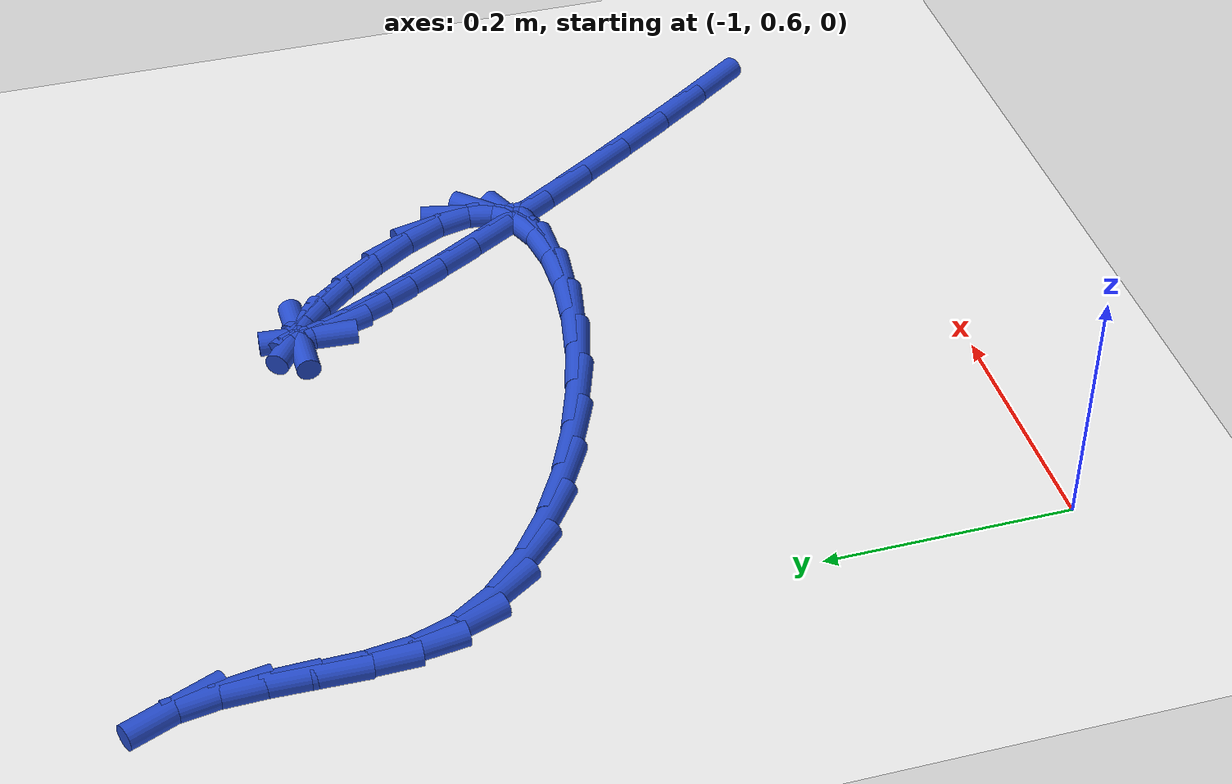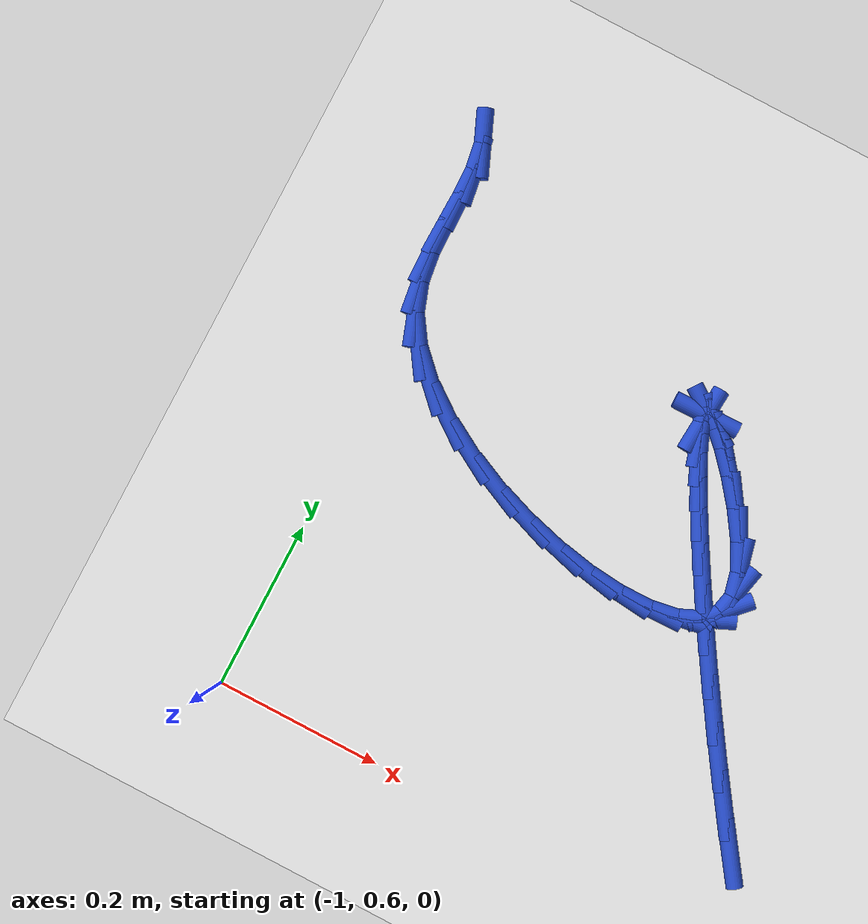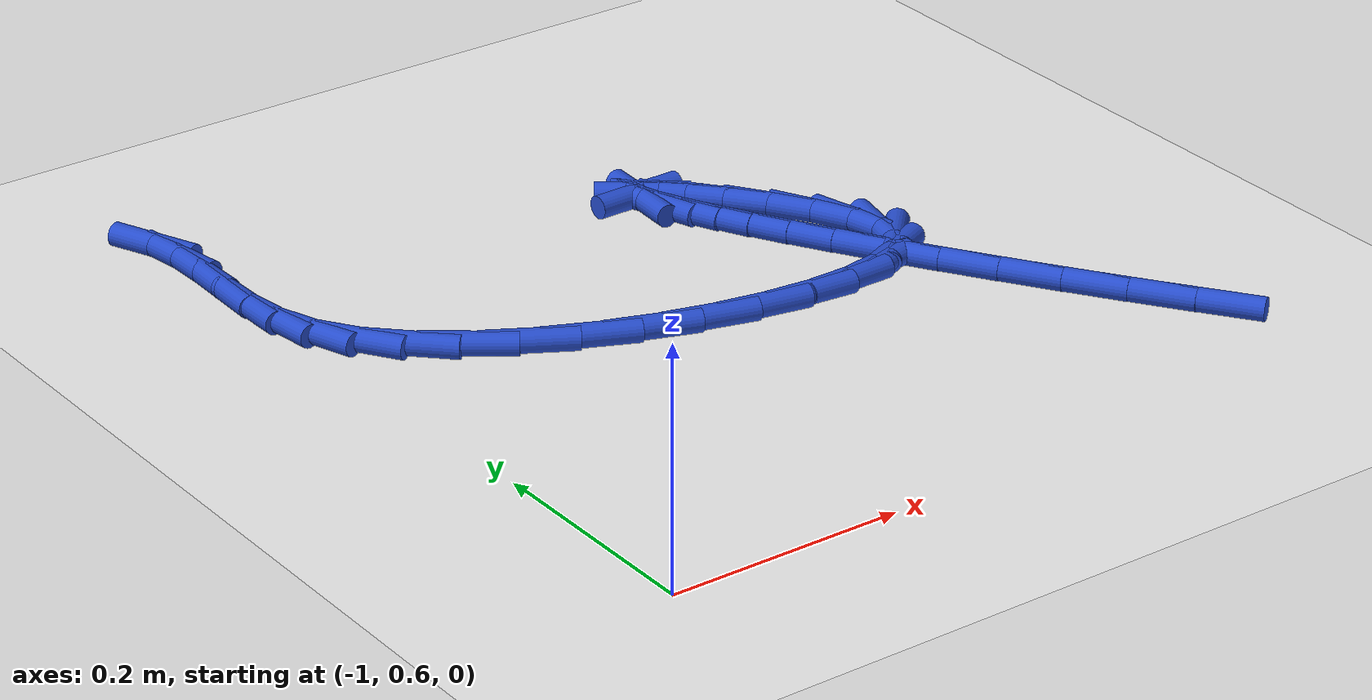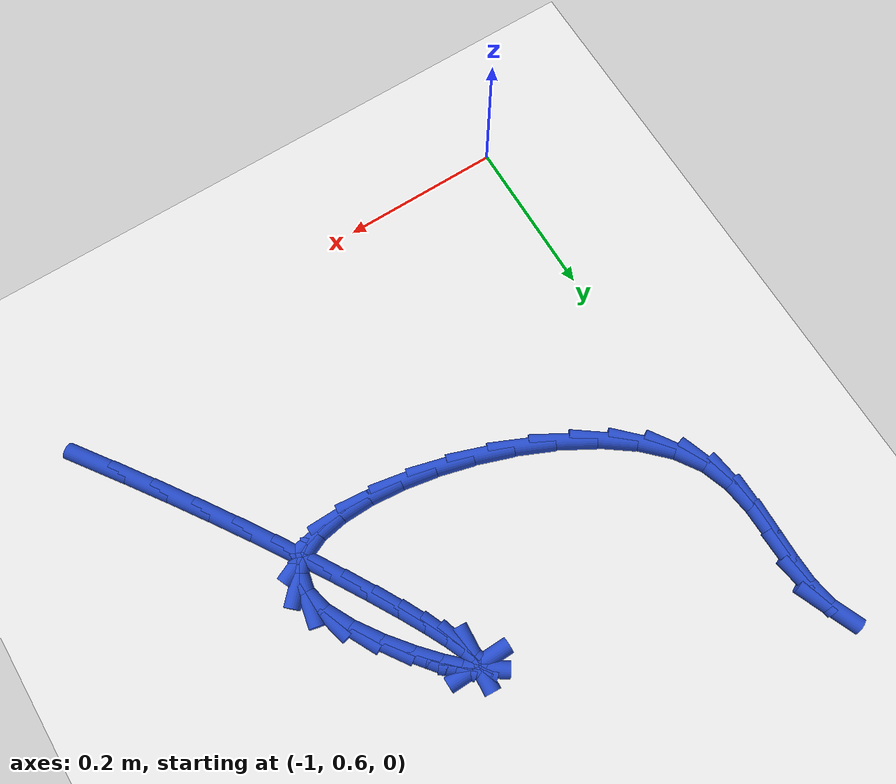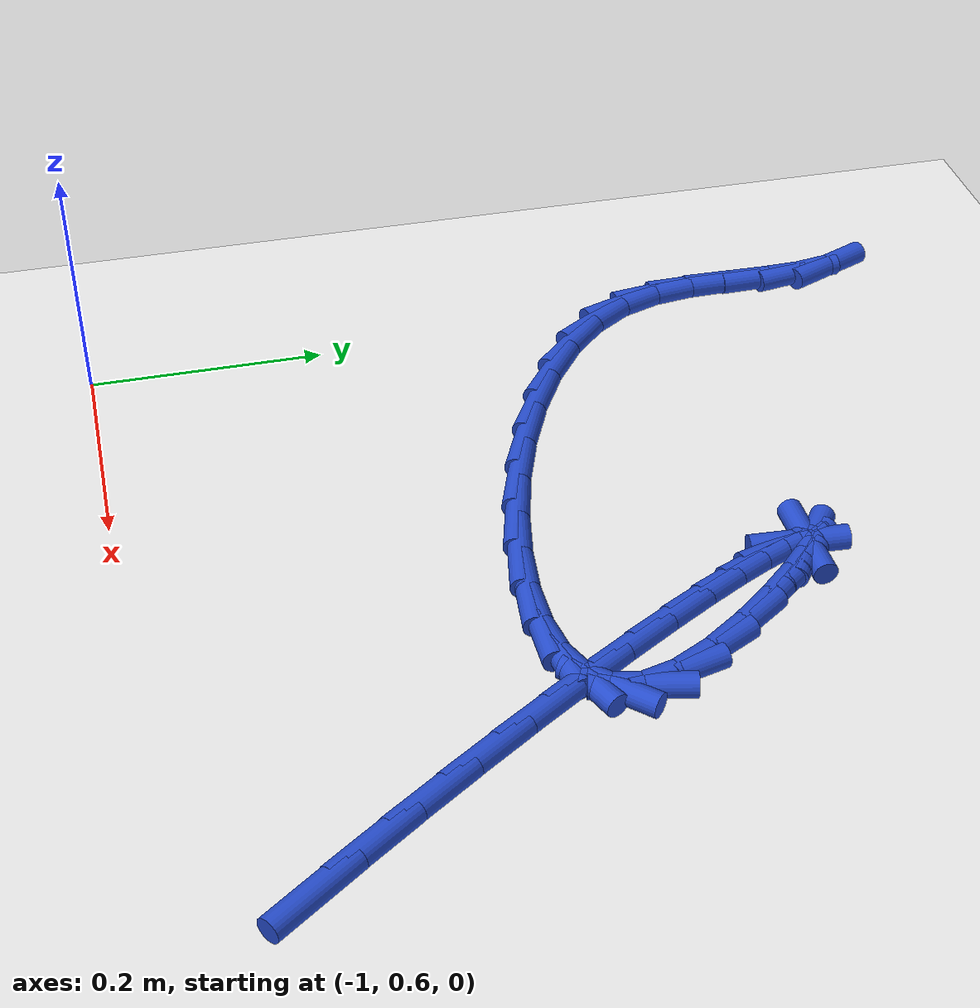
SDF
<sdf version="1.6">
 <world name="default">
  <model name="ground_plane">
   <static>1</static>
   <link name="link">
    <collision name="collision">
     <geometry><plane><normal>0 0 1</normal><size>100 100</size></plane></geometry>
     <surface><friction><ode><mu>100</mu><mu2>50</mu2></ode></friction></surface>
    </collision>
    <visual name="visual">
     <cast_shadows>0</cast_shadows>
     <geometry><plane><normal>0 0 1</normal><size>100 100</size></plane></geometry>
     <material>
      <script><uri>file://media/materials/scripts/gazebo.material</uri><name>Gazebo/WhiteGlow</name></script>
     </material>
    </visual>
   </link>
  </model>
  <model name="line">
   <link name="link_22">
    <pose>-0.39831452053494515 0.7006675943738175 0.01 0 1.57 -0.9530561510162411</pose>
    <collision name="collision">
     <geometry><cylinder><radius>0.01</radius><length>0.08</length></cylinder></geometry>
    </collision>
    <visual name="visual">
     <material>
      <script><name>Gazebo/Blue</name><uri>file://media/materials/scripts/gazebo.material</uri></script>
     </material>
     <geometry><cylinder><radius>0.01</radius><length>0.08</length></cylinder></geometry>
    </visual>
   </link>
   <link name="link_23">
    <pose>-0.43028040277579416 0.7456580954985781 0.01 0 1.57 -0.9663807685283005</pose>
    <collision name="collision">
     <geometry><cylinder><radius>0.01</radius><length>0.08</length></cylinder></geometry>
    </collision>
    <visual name="visual">
     <material>
      <script><name>Gazebo/Blue</name><uri>file://media/materials/scripts/gazebo.material</uri></script>
     </material>
     <geometry><cylinder><radius>0.01</radius><length>0.08</length></cylinder></geometry>
    </visual>
   </link>
   <link name="link_24">
    <pose>-0.46149798356182087 0.7908591243283036 0.01 0 1.57 -0.9789881647580871</pose>
    <collision name="collision">
     <geometry><cylinder><radius>0.01</radius><length>0.08</length></cylinder></geometry>
    </collision>
    <visual name="visual">
     <material>
      <script><name>Gazebo/Blue</name><uri>file://media/materials/scripts/gazebo.material</uri></script>
     </material>
     <geometry><cylinder><radius>0.01</radius><length>0.08</length></cylinder></geometry>
    </visual>
   </link>
   <link name="link_25">
    <pose>-0.49161210887785384 0.8356599710852626 0.01 0 1.57 -0.9913442603315072</pose>
    <collision name="collision">
     <geometry><cylinder><radius>0.01</radius><length>0.08</length></cylinder></geometry>
    </collision>
    <visual name="visual">
     <material>
      <script><name>Gazebo/Blue</name><uri>file://media/materials/scripts/gazebo.material</uri></script>
     </material>
     <geometry><cylinder><radius>0.01</radius><length>0.08</length></cylinder></geometry>
    </visual>
   </link>
   <link name="link_26">
    <pose>-0.5202676247087217 0.8794499259917243 0.01 0 1.57 -1.003943130118687</pose>
    <collision name="collision">
     <geometry><cylinder><radius>0.01</radius><length>0.08</length></cylinder></geometry>
    </collision>
    <visual name="visual">
     <material>
      <script><name>Gazebo/Blue</name><uri>file://media/materials/scripts/gazebo.material</uri></script>
     </material>
     <geometry><cylinder><radius>0.01</radius><length>0.08</length></cylinder></geometry>
    </visual>
   </link>
   <link name="link_27">
    <pose>-0.5471093770392523 0.9216182792699575 0.01 0 1.57 -1.0173849920575084</pose>
    <collision name="collision">
     <geometry><cylinder><radius>0.01</radius><length>0.08</length></cylinder></geometry>
    </collision>
    <visual name="visual">
     <material>
      <script><name>Gazebo/Blue</name><uri>file://media/materials/scripts/gazebo.material</uri></script>
     </material>
     <geometry><cylinder><radius>0.01</radius><length>0.08</length></cylinder></geometry>
    </visual>
   </link>
   <link name="link_28">
    <pose>-0.5717822118542749 0.9615543211422319 0.01 0 1.57 -1.0325015610652137</pose>
    <collision name="collision">
     <geometry><cylinder><radius>0.01</radius><length>0.08</length></cylinder></geometry>
    </collision>
    <visual name="visual">
     <material>
      <script><name>Gazebo/Blue</name><uri>file://media/materials/scripts/gazebo.material</uri></script>
     </material>
     <geometry><cylinder><radius>0.01</radius><length>0.08</length></cylinder></geometry>
    </visual>
   </link>
   <link name="link_29">
    <pose>-0.5939309751386179 0.9986473418308162 0.01 0 1.57 -1.0505956555619034</pose>
    <collision name="collision">
     <geometry><cylinder><radius>0.01</radius><length>0.08</length></cylinder></geometry>
    </collision>
    <visual name="visual">
     <material>
      <script><name>Gazebo/Blue</name><uri>file://media/materials/scripts/gazebo.material</uri></script>
     </material>
     <geometry><cylinder><radius>0.01</radius><length>0.08</length></cylinder></geometry>
    </visual>
   </link>
   <link name="link_30">
    <pose>-0.6132005128771093 1.032286631557979 0.01 0 1.57 -1.0739698075209996</pose>
    <collision name="collision">
     <geometry><cylinder><radius>0.01</radius><length>0.08</length></cylinder></geometry>
    </collision>
    <visual name="visual">
     <material>
      <script><name>Gazebo/Blue</name><uri>file://media/materials/scripts/gazebo.material</uri></script>
     </material>
     <geometry><cylinder><radius>0.01</radius><length>0.08</length></cylinder></geometry>
    </visual>
   </link>
   <link name="link_31">
    <pose>-0.6292356710545778 1.0618614805459898 0.01 0 1.57 -1.1072844598714207</pose>
    <collision name="collision">
     <geometry><cylinder><radius>0.01</radius><length>0.08</length></cylinder></geometry>
    </collision>
    <visual name="visual">
     <material>
      <script><name>Gazebo/Blue</name><uri>file://media/materials/scripts/gazebo.material</uri></script>
     </material>
     <geometry><cylinder><radius>0.01</radius><length>0.08</length></cylinder></geometry>
    </visual>
   </link>
   <link name="link_32">
    <pose>-0.6416812956558517 1.0867611790171174 0.01 0 1.57 -1.1618195149888566</pose>
    <collision name="collision">
     <geometry><cylinder><radius>0.01</radius><length>0.08</length></cylinder></geometry>
    </collision>
    <visual name="visual">
     <material>
      <script><name>Gazebo/Blue</name><uri>file://media/materials/scripts/gazebo.material</uri></script>
     </material>
     <geometry><cylinder><radius>0.01</radius><length>0.08</length></cylinder></geometry>
    </visual>
   </link>
   <link name="link_33">
    <pose>-0.6501822326657599 1.1063750171936308 0.01 0 1.57 -1.2736033630644181</pose>
    <collision name="collision">
     <geometry><cylinder><radius>0.01</radius><length>0.08</length></cylinder></geometry>
    </collision>
    <visual name="visual">
     <material>
      <script><name>Gazebo/Blue</name><uri>file://media/materials/scripts/gazebo.material</uri></script>
     </material>
     <geometry><cylinder><radius>0.01</radius><length>0.08</length></cylinder></geometry>
    </visual>
   </link>
   <link name="link_34">
    <pose>-0.6543833280691305 1.120092285297799 0.01 0 1.57 1.5079249345035188</pose>
    <collision name="collision">
     <geometry><cylinder><radius>0.01</radius><length>0.08</length></cylinder></geometry>
    </collision>
    <visual name="visual">
     <material>
      <script><name>Gazebo/Blue</name><uri>file://media/materials/scripts/gazebo.material</uri></script>
     </material>
     <geometry><cylinder><radius>0.01</radius><length>0.08</length></cylinder></geometry>
    </visual>
   </link>
   <link name="link_35">
    <pose>-0.6539294278507919 1.127302273551891 0.01 0 1.57 0.01683548589873867</pose>
    <collision name="collision">
     <geometry><cylinder><radius>0.01</radius><length>0.08</length></cylinder></geometry>
    </collision>
    <visual name="visual">
     <material>
      <script><name>Gazebo/Blue</name><uri>file://media/materials/scripts/gazebo.material</uri></script>
     </material>
     <geometry><cylinder><radius>0.01</radius><length>0.08</length></cylinder></geometry>
    </visual>
   </link>
   <link name="link_36">
    <pose>-0.6484653779955731 1.1273942721781762 0.01 0 1.57 -0.6141975529916798</pose>
    <collision name="collision">
     <geometry><cylinder><radius>0.01</radius><length>0.08</length></cylinder></geometry>
    </collision>
    <visual name="visual">
     <material>
      <script><name>Gazebo/Blue</name><uri>file://media/materials/scripts/gazebo.material</uri></script>
     </material>
     <geometry><cylinder><radius>0.01</radius><length>0.08</length></cylinder></geometry>
    </visual>
   </link>
   <link name="link_37">
    <pose>-0.6376360244883023 1.1197575713989232 0.01 0 1.57 -0.7677654376215126</pose>
    <collision name="collision">
     <geometry><cylinder><radius>0.01</radius><length>0.08</length></cylinder></geometry>
    </collision>
    <visual name="visual">
     <material>
      <script><name>Gazebo/Blue</name><uri>file://media/materials/scripts/gazebo.material</uri></script>
     </material>
     <geometry><cylinder><radius>0.01</radius><length>0.08</length></cylinder></geometry>
    </visual>
   </link>
   <link name="link_38">
    <pose>-0.6210878179454563 1.1037828914354766 0.01 0 1.57 -0.8380251424405725</pose>
    <collision name="collision">
     <geometry><cylinder><radius>0.01</radius><length>0.08</length></cylinder></geometry>
    </collision>
    <visual name="visual">
     <material>
      <script><name>Gazebo/Blue</name><uri>file://media/materials/scripts/gazebo.material</uri></script>
     </material>
     <geometry><cylinder><radius>0.01</radius><length>0.08</length></cylinder></geometry>
    </visual>
   </link>
   <link name="link_39">
    <pose>-0.5994410840275702 1.0797288404220173 0.01 0 1.57 -0.8987101870398445</pose>
    <collision name="collision">
     <geometry><cylinder><radius>0.01</radius><length>0.08</length></cylinder></geometry>
    </collision>
    <visual name="visual">
     <material>
      <script><name>Gazebo/Blue</name><uri>file://media/materials/scripts/gazebo.material</uri></script>
     </material>
     <geometry><cylinder><radius>0.01</radius><length>0.08</length></cylinder></geometry>
    </visual>
   </link>
   <link name="link_40">
    <pose>-0.5759406756607088 1.0501929256200482 0.01 0 1.57 -0.9759502711572631</pose>
    <collision name="collision">
     <geometry><cylinder><radius>0.01</radius><length>0.08</length></cylinder></geometry>
    </collision>
    <visual name="visual">
     <material>
      <script><name>Gazebo/Blue</name><uri>file://media/materials/scripts/gazebo.material</uri></script>
     </material>
     <geometry><cylinder><radius>0.01</radius><length>0.08</length></cylinder></geometry>
    </visual>
   </link>
   <link name="link_41">
    <pose>-0.554269107272415 1.0181626849519487 0.01 0 1.57 -1.097261912312723</pose>
    <collision name="collision">
     <geometry><cylinder><radius>0.01</radius><length>0.08</length></cylinder></geometry>
    </collision>
    <visual name="visual">
     <material>
      <script><name>Gazebo/Blue</name><uri>file://media/materials/scripts/gazebo.material</uri></script>
     </material>
     <geometry><cylinder><radius>0.01</radius><length>0.08</length></cylinder></geometry>
    </visual>
   </link>
   <link name="link_42">
    <pose>-0.5381088932902319 0.9866256563401004 0.01 0 1.57 -1.3273937072860282</pose>
    <collision name="collision">
     <geometry><cylinder><radius>0.01</radius><length>0.08</length></cylinder></geometry>
    </collision>
    <visual name="visual">
     <material>
      <script><name>Gazebo/Blue</name><uri>file://media/materials/scripts/gazebo.material</uri></script>
     </material>
     <geometry><cylinder><radius>0.01</radius><length>0.08</length></cylinder></geometry>
    </visual>
   </link>
   <link name="link_43">
    <pose>-0.5311416479299992 0.9585688188624538 0.01 0 1.57 1.3614976762369895</pose>
    <collision name="collision">
     <geometry><cylinder><radius>0.01</radius><length>0.08</length></cylinder></geometry>
    </collision>
    <visual name="visual">
     <material>
      <script><name>Gazebo/Blue</name><uri>file://media/materials/scripts/gazebo.material</uri></script>
     </material>
     <geometry><cylinder><radius>0.01</radius><length>0.08</length></cylinder></geometry>
    </visual>
   </link>
   <link name="link_44">
    <pose>-0.5358814487536512 0.9362543539146444 0.01 0 1.57 0.8153649722992526</pose>
    <collision name="collision">
     <geometry><cylinder><radius>0.01</radius><length>0.08</length></cylinder></geometry>
    </collision>
    <visual name="visual">
     <material>
      <script><name>Gazebo/Blue</name><uri>file://media/materials/scripts/gazebo.material</uri></script>
     </material>
     <geometry><cylinder><radius>0.01</radius><length>0.08</length></cylinder></geometry>
    </visual>
   </link>
   <link name="link_45">
    <pose>-0.551381722794714 0.9197960979355111 0.01 0 1.57 0.41542155542267994</pose>
    <collision name="collision">
     <geometry><cylinder><radius>0.01</radius><length>0.08</length></cylinder></geometry>
    </collision>
    <visual name="visual">
     <material>
      <script><name>Gazebo/Blue</name><uri>file://media/materials/scripts/gazebo.material</uri></script>
     </material>
     <geometry><cylinder><radius>0.01</radius><length>0.08</length></cylinder></geometry>
    </visual>
   </link>
   <link name="link_46">
    <pose>-0.5760577162157029 0.9089117096382022 0.01 0 1.57 0.1716257320462816</pose>
    <collision name="collision">
     <geometry><cylinder><radius>0.01</radius><length>0.08</length></cylinder></geometry>
    </collision>
    <visual name="visual">
     <material>
      <script><name>Gazebo/Blue</name><uri>file://media/materials/scripts/gazebo.material</uri></script>
     </material>
     <geometry><cylinder><radius>0.01</radius><length>0.08</length></cylinder></geometry>
    </visual>
   </link>
   <link name="link_47">
    <pose>-0.6083246751791332 0.903318847735865 0.01 0 1.57 0.015249103785514572</pose>
    <collision name="collision">
     <geometry><cylinder><radius>0.01</radius><length>0.08</length></cylinder></geometry>
    </collision>
    <visual name="visual">
     <material>
      <script><name>Gazebo/Blue</name><uri>file://media/materials/scripts/gazebo.material</uri></script>
     </material>
     <geometry><cylinder><radius>0.01</radius><length>0.08</length></cylinder></geometry>
    </visual>
   </link>
   <link name="link_48">
    <pose>-0.6465978458475204 0.9027351709416472 0.01 0 1.57 -0.09673897131933525</pose>
    <collision name="collision">
     <geometry><cylinder><radius>0.01</radius><length>0.08</length></cylinder></geometry>
    </collision>
    <visual name="visual">
     <material>
      <script><name>Gazebo/Blue</name><uri>file://media/materials/scripts/gazebo.material</uri></script>
     </material>
     <geometry><cylinder><radius>0.01</radius><length>0.08</length></cylinder></geometry>
    </visual>
   </link>
   <link name="link_49">
    <pose>-0.6892924743833799 0.9068783379686965 0.01 0 1.57 -0.18642014039910562</pose>
    <collision name="collision">
     <geometry><cylinder><radius>0.01</radius><length>0.08</length></cylinder></geometry>
    </collision>
    <visual name="visual">
     <material>
      <script><name>Gazebo/Blue</name><uri>file://media/materials/scripts/gazebo.material</uri></script>
     </material>
     <geometry><cylinder><radius>0.01</radius><length>0.08</length></cylinder></geometry>
    </visual>
   </link>
   <link name="link_50">
    <pose>-0.7348238069492272 0.9154660075301603 0.01 0 1.57 -0.2660680815209938</pose>
    <collision name="collision">
     <geometry><cylinder><radius>0.01</radius><length>0.08</length></cylinder></geometry>
    </collision>
    <visual name="visual">
     <material>
      <script><name>Gazebo/Blue</name><uri>file://media/materials/scripts/gazebo.material</uri></script>
     </material>
     <geometry><cylinder><radius>0.01</radius><length>0.08</length></cylinder></geometry>
    </visual>
   </link>
   <link name="link_51">
    <pose>-0.7816070897075779 0.9282158383391869 0.01 0 1.57 -0.34379115194512244</pose>
    <collision name="collision">
     <geometry><cylinder><radius>0.01</radius><length>0.08</length></cylinder></geometry>
    </collision>
    <visual name="visual">
     <material>
      <script><name>Gazebo/Blue</name><uri>file://media/materials/scripts/gazebo.material</uri></script>
     </material>
     <geometry><cylinder><radius>0.01</radius><length>0.08</length></cylinder></geometry>
    </visual>
   </link>
   <link name="link_52">
    <pose>-0.8280575688209469 0.9448454891089232 0.01 0 1.57 -0.42634630041385174</pose>
    <collision name="collision">
     <geometry><cylinder><radius>0.01</radius><length>0.08</length></cylinder></geometry>
    </collision>
    <visual name="visual">
     <material>
      <script><name>Gazebo/Blue</name><uri>file://media/materials/scripts/gazebo.material</uri></script>
     </material>
     <geometry><cylinder><radius>0.01</radius><length>0.08</length></cylinder></geometry>
    </visual>
   </link>
   <link name="link_53">
    <pose>-0.8725904904518501 0.9650726185525174 0.01 0 1.57 -0.5209118596285488</pose>
    <collision name="collision">
     <geometry><cylinder><radius>0.01</radius><length>0.08</length></cylinder></geometry>
    </collision>
    <visual name="visual">
     <material>
      <script><name>Gazebo/Blue</name><uri>file://media/materials/scripts/gazebo.material</uri></script>
     </material>
     <geometry><cylinder><radius>0.01</radius><length>0.08</length></cylinder></geometry>
    </visual>
   </link>
   <link name="link_54">
    <pose>-0.9136211007628028 0.9886148853831167 0.01 0 1.57 -0.6366538419568947</pose>
    <collision name="collision">
     <geometry><cylinder><radius>0.01</radius><length>0.08</length></cylinder></geometry>
    </collision>
    <visual name="visual">
     <material>
      <script><name>Gazebo/Blue</name><uri>file://media/materials/scripts/gazebo.material</uri></script>
     </material>
     <geometry><cylinder><radius>0.01</radius><length>0.08</length></cylinder></geometry>
    </visual>
   </link>
   <link name="link_55">
    <pose>-0.9495646459163204 1.0151899483138689 0.01 0 1.57 -0.7863161514590385</pose>
    <collision name="collision">
     <geometry><cylinder><radius>0.01</radius><length>0.08</length></cylinder></geometry>
    </collision>
    <visual name="visual">
     <material>
      <script><name>Gazebo/Blue</name><uri>file://media/materials/scripts/gazebo.material</uri></script>
     </material>
     <geometry><cylinder><radius>0.01</radius><length>0.08</length></cylinder></geometry>
    </visual>
   </link>
   <link name="link_56">
    <pose>-0.9788363720749184 1.0445154660579217 0.01 0 1.57 -0.9867366314882391</pose>
    <collision name="collision">
     <geometry><cylinder><radius>0.01</radius><length>0.08</length></cylinder></geometry>
    </collision>
    <visual name="visual">
     <material>
      <script><name>Gazebo/Blue</name><uri>file://media/materials/scripts/gazebo.material</uri></script>
     </material>
     <geometry><cylinder><radius>0.01</radius><length>0.08</length></cylinder></geometry>
    </visual>
   </link>
   <link name="link_57">
    <pose>-0.9998515254011121 1.0763090973284228 0.01 0 1.57 -1.2338779355242624</pose>
    <collision name="collision">
     <geometry><cylinder><radius>0.01</radius><length>0.08</length></cylinder></geometry>
    </collision>
    <visual name="visual">
     <material>
      <script><name>Gazebo/Blue</name><uri>file://media/materials/scripts/gazebo.material</uri></script>
     </material>
     <geometry><cylinder><radius>0.01</radius><length>0.08</length></cylinder></geometry>
    </visual>
   </link>
   <link name="link_58">
    <pose>-1.011719207614011 1.1101902915701518 0.01 0 1.57 -1.4353762513213302</pose>
    <collision name="collision">
     <geometry><cylinder><radius>0.01</radius><length>0.08</length></cylinder></geometry>
    </collision>
    <visual name="visual">
     <material>
      <script><name>Gazebo/Blue</name><uri>file://media/materials/scripts/gazebo.material</uri></script>
     </material>
     <geometry><cylinder><radius>0.01</radius><length>0.08</length></cylinder></geometry>
    </visual>
   </link>
   <link name="link_59">
    <pose>-1.0165111078393867 1.1453591695377592 0.01 0 1.57 -1.554526504624535</pose>
    <collision name="collision">
     <geometry><cylinder><radius>0.01</radius><length>0.08</length></cylinder></geometry>
    </collision>
    <visual name="visual">
     <material>
      <script><name>Gazebo/Blue</name><uri>file://media/materials/scripts/gazebo.material</uri></script>
     </material>
     <geometry><cylinder><radius>0.01</radius><length>0.08</length></cylinder></geometry>
    </visual>
   </link>
   <link name="link_60">
    <pose>-1.0170894662319758 1.180903956307575 0.01 0 1.57 1.548721663550739</pose>
    <collision name="collision">
     <geometry><cylinder><radius>0.01</radius><length>0.08</length></cylinder></geometry>
    </collision>
    <visual name="visual">
     <material>
      <script><name>Gazebo/Blue</name><uri>file://media/materials/scripts/gazebo.material</uri></script>
     </material>
     <geometry><cylinder><radius>0.01</radius><length>0.08</length></cylinder></geometry>
    </visual>
   </link>
   <link name="link_61">
    <pose>-1.016316530569727 1.2159128758769289 0.01 0 1.57 -1.5488097036756352</pose>
    <collision name="collision">
     <geometry><cylinder><radius>0.01</radius><length>0.08</length></cylinder></geometry>
    </collision>
    <visual name="visual">
     <material>
      <script><name>Gazebo/Blue</name><uri>file://media/materials/scripts/gazebo.material</uri></script>
     </material>
     <geometry><cylinder><radius>0.01</radius><length>0.08</length></cylinder></geometry>
    </visual>
   </link>
   <link name="link_62">
    <pose>-1.0170545486305882 1.24947415224315 0.01 0 1.57 -1.4084270370990997</pose>
    <collision name="collision">
     <geometry><cylinder><radius>0.01</radius><length>0.08</length></cylinder></geometry>
    </collision>
    <visual name="visual">
     <material>
      <script><name>Gazebo/Blue</name><uri>file://media/materials/scripts/gazebo.material</uri></script>
     </material>
     <geometry><cylinder><radius>0.01</radius><length>0.08</length></cylinder></geometry>
    </visual>
   </link>
   <link name="link_63">
    <pose>-1.0221657681925085 1.2806760094035685 0.01 0 1.57 -1.1697238147506932</pose>
    <collision name="collision">
     <geometry><cylinder><radius>0.01</radius><length>0.08</length></cylinder></geometry>
    </collision>
    <visual name="visual">
     <material>
      <script><name>Gazebo/Blue</name><uri>file://media/materials/scripts/gazebo.material</uri></script>
     </material>
     <geometry><cylinder><radius>0.01</radius><length>0.08</length></cylinder></geometry>
    </visual>
   </link>
  </model>
 </world>
</sdf>
